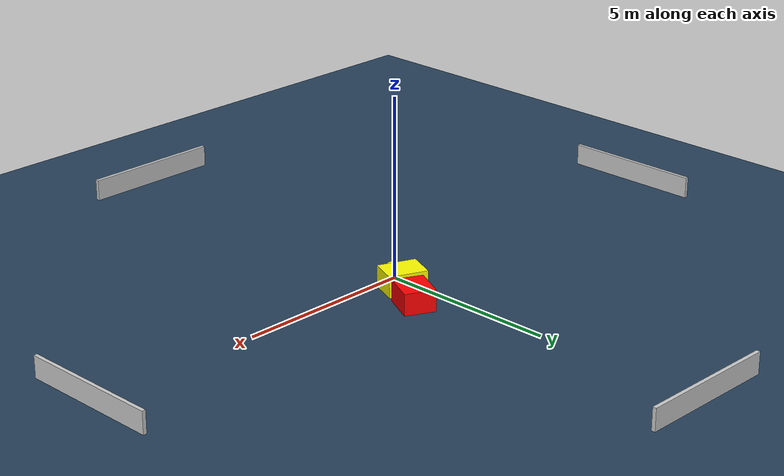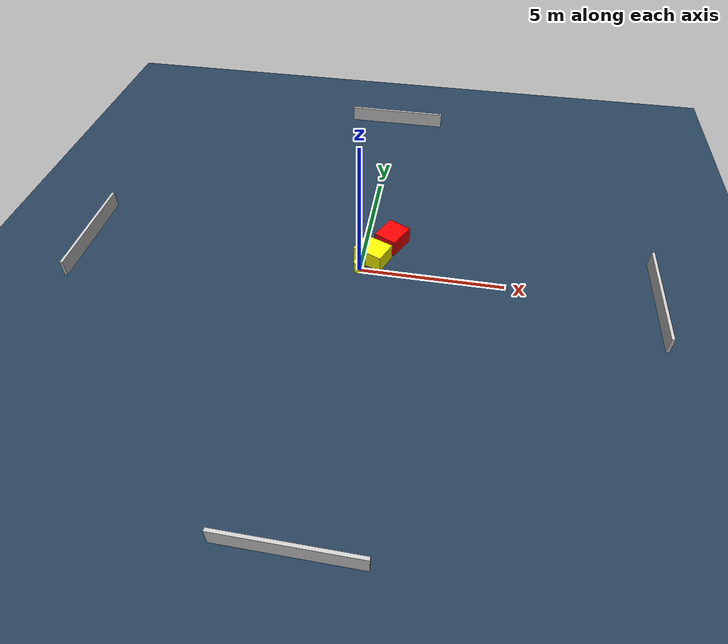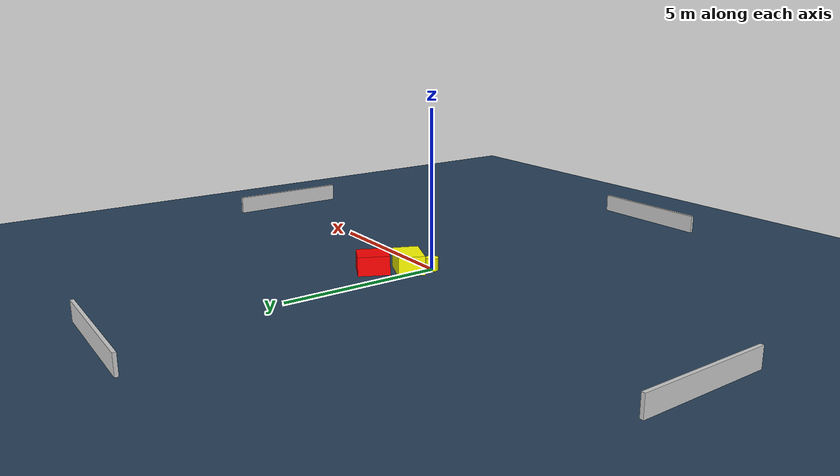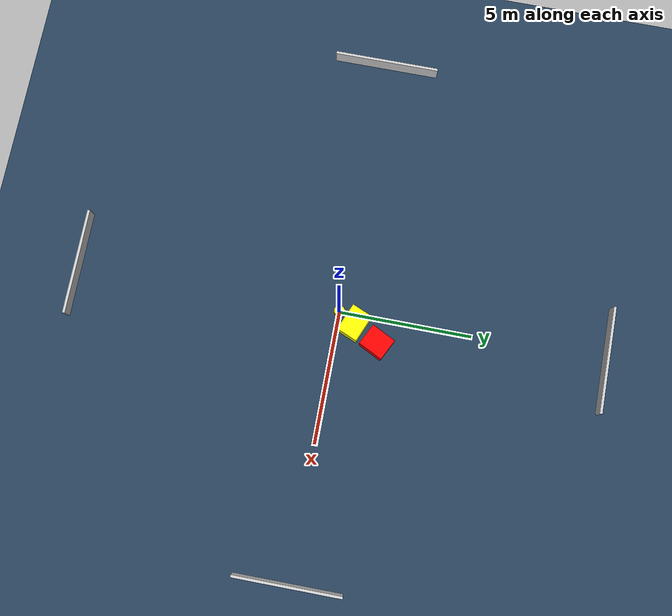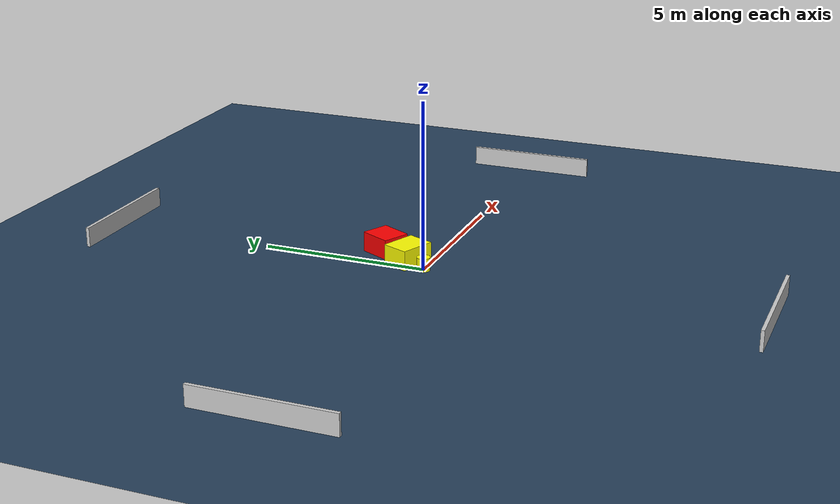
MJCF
<?xml version="1.0" ?>
<mujoco model="generated_environment">
  <option timestep="0.01" integrator="RK4" cone="elliptic"/>
  <default>
    <geom density="1"/>
  </default>
  <asset>
    <texture builtin="gradient" height="3072" name="skybox" rgb1="0.3 0.5 0.7" rgb2="0 0 0" type="skybox" width="512"/>
    <texture builtin="checker" height="300" name="groundplane" rgb1="0.2 0.3 0.4" rgb2="0.1 0.2 0.3" type="2d" width="300"/>
    <material name="groundplane" reflectance="0.2" texrepeat="5 5" texture="groundplane"/>
  </asset>
  <worldbody>
    <light dir="0 0 -1" directional="true" pos="0 0 1.5"/>
    <geom condim="3" friction="0.5 0.005 0.001" material="groundplane" name="floor" pos="0 0 0" size="0 0 0.05" type="plane"/>
    <body name="walls">
      <geom name="wall_1" condim="4" pos="-10.0 0.0 0.3" rgba="0.800000011920929 0.800000011920929 0.800000011920929 1.0" size="0.05 2.0 0.3" type="box"/>
      <geom name="wall_2" condim="4" pos="10.0 0.0 0.3" rgba="0.800000011920929 0.800000011920929 0.800000011920929 1.0" size="0.05 2.0 0.3" type="box"/>
      <geom name="wall_3" condim="4" pos="0.0 -10.0 0.3" rgba="0.800000011920929 0.800000011920929 0.800000011920929 1.0" size="2.0 0.05 0.3" type="box"/>
      <geom name="wall_4" condim="4" pos="0.0 10.0 0.3" rgba="0.800000011920929 0.800000011920929 0.800000011920929 1.0" size="2.0 0.05 0.3" type="box"/>
    </body>
    <body name="robot">
      <joint name="joint_x" type="slide" pos="0 0 0" axis="1 0 0"/>
      <joint name="joint_y" type="slide" pos="0 0 0" axis="0 1 0"/>
      <geom name="robot" type="cylinder" pos="0.0 0.0 0.2" size="0.2 0.2 0.0" mass="5.0" friction="1.0 0.005 0.0001" condim="4" rgba="1.0 1.0 0.0 1.0"/>
    </body>
    <body name="obstacle_1_movable">
      <geom name="obstacle_1_movable" condim="4" pos="0.3644513243183149 0.633739413987276 0.3" euler="0 0 247.2196489971168" friction="0.0 0.005 0.001" rgba="1.0 1.0 0.0 1.0" size="0.41332753417394347 0.543481079748337 0.3" type="box" mass="0.1"/>
      <joint type="free"/>
    </body>
    <body name="obstacle_2_static">
      <geom name="obstacle_2_static" condim="4" pos="0.921580190118236 1.572201209727445 0.3" euler="0 0 63.28423618409692" friction="0.0 0.005 0.001" rgba="1.0 0.0 0.0 1.0" size="0.49425432907063227 0.4282776795803902 0.3" type="box"/>
    </body>
  </worldbody>
  <actuator>
    <motor name="actuator_x" joint="joint_x" gear="1" ctrlrange="-1 1"/>
    <motor name="actuator_y" joint="joint_y" gear="1" ctrlrange="-1 1"/>
  </actuator>
</mujoco>
